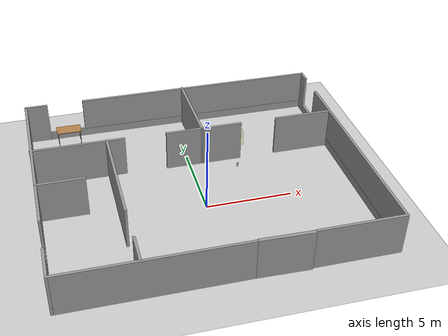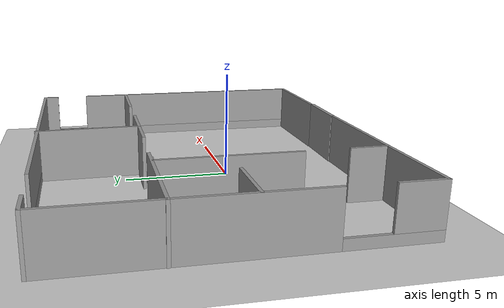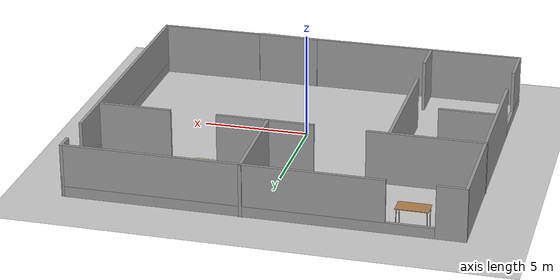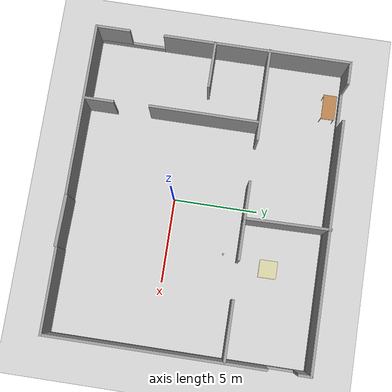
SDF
<sdf version="1.7">
 <world name="default">
  <light name="sun" type="directional">
   <pose>0 0 10 0 -0 0</pose>
   <diffuse>0.8 0.8 0.8 1</diffuse>
   <specular>0.2 0.2 0.2 1</specular>
   <attenuation>
    <range>1000</range>
    <constant>0.9</constant>
    <linear>0.01</linear>
    <quadratic>0.001</quadratic>
   </attenuation>
   <direction>-0.5 0.1 -0.9</direction>
   <spot><inner_angle>0</inner_angle><outer_angle>0</outer_angle><falloff>0</falloff></spot>
  </light>
  <model name="ground_plane">
   <static>1</static>
   <link name="link">
    <collision name="collision">
     <geometry><plane><normal>0 0 1</normal><size>100 100</size></plane></geometry>
     <surface><friction><ode><mu>100</mu><mu2>50</mu2></ode></friction></surface>
    </collision>
    <visual name="visual">
     <cast_shadows>0</cast_shadows>
     <geometry><plane><normal>0 0 1</normal><size>100 100</size></plane></geometry>
     <material>
      <script><uri>file://media/materials/scripts/gazebo.material</uri><name>Gazebo/Grey</name></script>
     </material>
    </visual>
   </link>
  </model>
  <gravity>0 0 -9.8</gravity>
  <magnetic_field>6e-06 2.3e-05 -4.2e-05</magnetic_field>
  <atmosphere type="adiabatic"/>
  <physics type="ode">
   <max_step_size>0.001</max_step_size>
   <real_time_factor>1</real_time_factor>
   <real_time_update_rate>1000</real_time_update_rate>
  </physics>
  <scene><ambient>0.4 0.4 0.4 1</ambient><background>0.7 0.7 0.7 1</background><shadows>1</shadows></scene>
  <spherical_coordinates>
   <surface_model>EARTH_WGS84</surface_model>
   <latitude_deg>0</latitude_deg>
   <longitude_deg>0</longitude_deg>
   <elevation>0</elevation>
   <heading_deg>0</heading_deg>
  </spherical_coordinates>
  <model name="my_house">
   <pose>-0.185618 1.56339 0 0 -0 0</pose>
   <link name="Door_3">
    <collision name="Door_3_Collision">
     <geometry><box><size>3.014 0.2 2.5</size></box></geometry>
     <pose>0 0 1.25 0 -0 0</pose>
    </collision>
    <visual name="Door_3_Visual">
     <pose>0 0 1.25 0 -0 0</pose>
     <geometry><box><size>3.014 0.2 2.5</size></box></geometry>
     <material>
      <script><uri>file://media/materials/scripts/gazebo.material</uri><name>Gazebo/Grey</name></script>
     </material>
    </visual>
    <pose>2.64688 -7.59749 0 0 -0 3.11727</pose>
   </link>
   <link name="Wall_15">
    <pose>-9.03486 -0.029337 0 0 -0 -1.5708</pose>
    <visual name="Wall_15_Visual_0">
     <pose>-2.04674 0 1.25 0 -0 0</pose>
     <geometry><box><size>11.1565 0.15 2.5</size></box></geometry>
     <material>
      <script><uri>file://media/materials/scripts/gazebo.material</uri><name>Gazebo/Grey</name></script>
      <ambient>1 1 1 1</ambient>
     </material>
     <meta><layer>0</layer></meta>
    </visual>
    <collision name="Wall_15_Collision_0">
     <geometry><box><size>11.1565 0.15 2.5</size></box></geometry>
     <pose>-2.04674 0 1.25 0 -0 0</pose>
    </collision>
    <visual name="Wall_15_Visual_1">
     <pose>5.57826 0 0.25 0 -0 0</pose>
     <geometry><box><size>4.09349 0.15 0.5</size></box></geometry>
     <material>
      <script><uri>file://media/materials/scripts/gazebo.material</uri><name>Gazebo/Grey</name></script>
      <ambient>1 1 1 1</ambient>
     </material>
     <meta><layer>0</layer></meta>
    </visual>
    <collision name="Wall_15_Collision_1">
     <geometry><box><size>4.09349 0.15 0.5</size></box></geometry>
     <pose>5.57826 0 0.25 0 -0 0</pose>
    </collision>
    <visual name="Wall_15_Visual_2">
     <pose>6.57826 0 1.5 0 -0 0</pose>
     <geometry><box><size>2.09349 0.15 2</size></box></geometry>
     <material>
      <script><uri>file://media/materials/scripts/gazebo.material</uri><name>Gazebo/Grey</name></script>
      <ambient>1 1 1 1</ambient>
     </material>
     <meta><layer>0</layer></meta>
    </visual>
    <collision name="Wall_15_Collision_2">
     <geometry><box><size>2.09349 0.15 2</size></box></geometry>
     <pose>6.57826 0 1.5 0 -0 0</pose>
    </collision>
   </link>
   <link name="Wall_18">
    <pose>0.015141 7.52066 0 0 -0 0</pose>
    <visual name="Wall_18_Visual_0">
     <pose>-8.43125 0 1.25 0 -0 0</pose>
     <geometry><box><size>1.3875 0.15 2.5</size></box></geometry>
     <material>
      <script><uri>file://media/materials/scripts/gazebo.material</uri><name>Gazebo/Grey</name></script>
      <ambient>1 1 1 1</ambient>
     </material>
     <meta><layer>0</layer></meta>
    </visual>
    <collision name="Wall_18_Collision_0">
     <geometry><box><size>1.3875 0.15 2.5</size></box></geometry>
     <pose>-8.43125 0 1.25 0 -0 0</pose>
    </collision>
    <visual name="Wall_18_Visual_1">
     <pose>0.693749 0 0.25 0 -0 0</pose>
     <geometry><box><size>16.8625 0.15 0.5</size></box></geometry>
     <material>
      <script><uri>file://media/materials/scripts/gazebo.material</uri><name>Gazebo/Grey</name></script>
      <ambient>1 1 1 1</ambient>
     </material>
     <meta><layer>0</layer></meta>
    </visual>
    <collision name="Wall_18_Collision_1">
     <geometry><box><size>16.8625 0.15 0.5</size></box></geometry>
     <pose>0.693749 0 0.25 0 -0 0</pose>
    </collision>
    <visual name="Wall_18_Visual_2">
     <pose>1.77875 0 1.5 0 -0 0</pose>
     <geometry><box><size>14.6925 0.15 2</size></box></geometry>
     <material>
      <script><uri>file://media/materials/scripts/gazebo.material</uri><name>Gazebo/Grey</name></script>
      <ambient>1 1 1 1</ambient>
     </material>
     <meta><layer>0</layer></meta>
    </visual>
    <collision name="Wall_18_Collision_2">
     <geometry><box><size>14.6925 0.15 2</size></box></geometry>
     <pose>1.77875 0 1.5 0 -0 0</pose>
    </collision>
   </link>
   <link name="Wall_19">
    <pose>9.06514 -0.029337 0 0 -0 -1.5708</pose>
    <visual name="Wall_19_Visual_0">
     <pose>-7.20925 0 1.25 0 -0 0</pose>
     <geometry><box><size>0.831501 0.15 2.5</size></box></geometry>
     <material>
      <script><uri>file://media/materials/scripts/gazebo.material</uri><name>Gazebo/Grey</name></script>
      <ambient>1 1 1 1</ambient>
     </material>
     <meta><layer>0</layer></meta>
    </visual>
    <collision name="Wall_19_Collision_0">
     <geometry><box><size>0.831501 0.15 2.5</size></box></geometry>
     <pose>-7.20925 0 1.25 0 -0 0</pose>
    </collision>
    <visual name="Wall_19_Visual_1">
     <pose>0.41575 0 0.25 0 -0 0</pose>
     <geometry><box><size>14.4185 0.15 0.5</size></box></geometry>
     <material>
      <script><uri>file://media/materials/scripts/gazebo.material</uri><name>Gazebo/Grey</name></script>
      <ambient>1 1 1 1</ambient>
     </material>
     <meta><layer>0</layer></meta>
    </visual>
    <collision name="Wall_19_Collision_1">
     <geometry><box><size>14.4185 0.15 0.5</size></box></geometry>
     <pose>0.41575 0 0.25 0 -0 0</pose>
    </collision>
    <visual name="Wall_19_Visual_2">
     <pose>1.24225 0 1.5 0 -0 0</pose>
     <geometry><box><size>12.7655 0.15 2</size></box></geometry>
     <material>
      <script><uri>file://media/materials/scripts/gazebo.material</uri><name>Gazebo/Grey</name></script>
      <ambient>1 1 1 1</ambient>
     </material>
     <meta><layer>0</layer></meta>
    </visual>
    <collision name="Wall_19_Collision_2">
     <geometry><box><size>12.7655 0.15 2</size></box></geometry>
     <pose>1.24225 0 1.5 0 -0 0</pose>
    </collision>
   </link>
   <link name="Wall_20">
    <collision name="Wall_20_Collision">
     <geometry><box><size>5 0.15 2.5</size></box></geometry>
     <pose>0 0 1.25 0 -0 0</pose>
    </collision>
    <visual name="Wall_20_Visual">
     <pose>0 0 1.25 0 -0 0</pose>
     <geometry><box><size>5 0.15 2.5</size></box></geometry>
     <material>
      <script><uri>file://media/materials/scripts/gazebo.material</uri><name>Gazebo/Grey</name></script>
      <ambient>1 1 1 1</ambient>
     </material>
     <meta><layer>0</layer></meta>
    </visual>
    <pose>6.64014 -7.57934 0 0 -0 3.14159</pose>
   </link>
   <link name="Wall_24">
    <collision name="Wall_24_Collision">
     <geometry><box><size>10.25 0.15 2.5</size></box></geometry>
     <pose>0 0 1.25 0 -0 0</pose>
    </collision>
    <visual name="Wall_24_Visual">
     <pose>0 0 1.25 0 -0 0</pose>
     <geometry><box><size>10.25 0.15 2.5</size></box></geometry>
     <material>
      <script><uri>file://media/materials/scripts/gazebo.material</uri><name>Gazebo/Grey</name></script>
      <ambient>1 1 1 1</ambient>
     </material>
     <meta><layer>0</layer></meta>
    </visual>
    <pose>-3.98486 -7.57934 0 0 -0 0</pose>
   </link>
   <link name="Wall_27">
    <collision name="Wall_27_Collision">
     <geometry><box><size>5.5 0.15 2.5</size></box></geometry>
     <pose>0 0 1.25 0 -0 0</pose>
    </collision>
    <visual name="Wall_27_Visual">
     <pose>0 0 1.25 0 -0 0</pose>
     <geometry><box><size>5.5 0.15 2.5</size></box></geometry>
     <material>
      <script><uri>file://media/materials/scripts/gazebo.material</uri><name>Gazebo/Grey</name></script>
      <ambient>1 1 1 1</ambient>
     </material>
     <meta><layer>0</layer></meta>
    </visual>
    <pose>-6.39014 2.7553 0 0 -0 0</pose>
   </link>
   <link name="Wall_30">
    <collision name="Wall_30_Collision">
     <geometry><box><size>3.5 0.15 2.5</size></box></geometry>
     <pose>0 0 1.25 0 -0 0</pose>
    </collision>
    <visual name="Wall_30_Visual">
     <pose>0 0 1.25 0 -0 0</pose>
     <geometry><box><size>3.5 0.15 2.5</size></box></geometry>
     <material>
      <script><uri>file://media/materials/scripts/gazebo.material</uri><name>Gazebo/Grey</name></script>
      <ambient>1 1 1 1</ambient>
     </material>
     <meta><layer>0</layer></meta>
    </visual>
    <pose>7.30417 2.68968 0 0 -0 3.14159</pose>
   </link>
   <link name="Wall_32">
    <collision name="Wall_32_Collision">
     <geometry><box><size>5.05073 0.15 2.5</size></box></geometry>
     <pose>0 0 1.25 0 -0 0</pose>
    </collision>
    <visual name="Wall_32_Visual">
     <pose>0 0 1.25 0 -0 0</pose>
     <geometry><box><size>5.05073 0.15 2.5</size></box></geometry>
     <material>
      <script><uri>file://media/materials/scripts/gazebo.material</uri><name>Gazebo/Grey</name></script>
      <ambient>1 1 1 1</ambient>
     </material>
     <meta><layer>0</layer></meta>
    </visual>
    <pose>0.917976 5.12805 0 0 -0 -1.55352</pose>
   </link>
   <link name="Wall_33">
    <collision name="Wall_33_Collision">
     <geometry><box><size>2.5 0.15 2.5</size></box></geometry>
     <pose>0 0 1.25 0 -0 0</pose>
    </collision>
    <visual name="Wall_33_Visual">
     <pose>0 0 1.25 0 -0 0</pose>
     <geometry><box><size>2.5 0.15 2.5</size></box></geometry>
     <material>
      <script><uri>file://media/materials/scripts/gazebo.material</uri><name>Gazebo/Grey</name></script>
      <ambient>1 1 1 1</ambient>
     </material>
     <meta><layer>0</layer></meta>
    </visual>
    <pose>2.13531 2.67805 0 0 -0 0</pose>
   </link>
   <link name="Wall_35">
    <collision name="Wall_35_Collision">
     <geometry><box><size>2.25 0.15 2.5</size></box></geometry>
     <pose>0 0 1.25 0 -0 0</pose>
    </collision>
    <visual name="Wall_35_Visual">
     <pose>0 0 1.25 0 -0 0</pose>
     <geometry><box><size>2.25 0.15 2.5</size></box></geometry>
     <material>
      <script><uri>file://media/materials/scripts/gazebo.material</uri><name>Gazebo/Grey</name></script>
      <ambient>1 1 1 1</ambient>
     </material>
     <meta><layer>0</layer></meta>
    </visual>
    <pose>-0.089685 2.67805 0 0 -0 3.14159</pose>
   </link>
   <link name="Wall_37">
    <collision name="Wall_37_Collision">
     <geometry><box><size>6.5 0.15 2.5</size></box></geometry>
     <pose>0 0 1.25 0 -0 0</pose>
    </collision>
    <visual name="Wall_37_Visual">
     <pose>0 0 1.25 0 -0 0</pose>
     <geometry><box><size>6.5 0.15 2.5</size></box></geometry>
     <material>
      <script><uri>file://media/materials/scripts/gazebo.material</uri><name>Gazebo/Grey</name></script>
      <ambient>1 1 1 1</ambient>
     </material>
     <meta><layer>0</layer></meta>
    </visual>
    <pose>-4.7017 -0.508963 0 0 -0 -1.5708</pose>
   </link>
   <link name="Wall_39">
    <collision name="Wall_39_Collision">
     <geometry><box><size>1.75 0.15 2.5</size></box></geometry>
     <pose>0 0 1.25 0 -0 0</pose>
    </collision>
    <visual name="Wall_39_Visual">
     <pose>0 0 1.25 0 -0 0</pose>
     <geometry><box><size>1.75 0.15 2.5</size></box></geometry>
     <material>
      <script><uri>file://media/materials/scripts/gazebo.material</uri><name>Gazebo/Grey</name></script>
      <ambient>1 1 1 1</ambient>
     </material>
     <meta><layer>0</layer></meta>
    </visual>
    <pose>-4.63608 -6.68075 0 0 -0 1.5708</pose>
   </link>
   <link name="Wall_41">
    <collision name="Wall_41_Collision">
     <geometry><box><size>2.75 0.15 2.5</size></box></geometry>
     <pose>0 0 1.25 0 -0 0</pose>
    </collision>
    <visual name="Wall_41_Visual">
     <pose>0 0 1.25 0 -0 0</pose>
     <geometry><box><size>2.75 0.15 2.5</size></box></geometry>
     <material>
      <script><uri>file://media/materials/scripts/gazebo.material</uri><name>Gazebo/Grey</name></script>
      <ambient>1 1 1 1</ambient>
     </material>
     <meta><layer>0</layer></meta>
    </visual>
    <pose>-7.69953 -0.492678 0 0 -0 0</pose>
   </link>
   <static>1</static>
  </model>
  <model name="table">
   <static>1</static>
   <link name="link">
    <collision name="surface">
     <pose>0 0 1 0 -0 0</pose>
     <geometry><box><size>1.5 0.8 0.03</size></box></geometry>
     <surface><friction><ode><mu>0.6</mu><mu2>0.6</mu2></ode></friction></surface>
    </collision>
    <visual name="visual1">
     <pose>0 0 1 0 -0 0</pose>
     <geometry><box><size>1.5 0.8 0.03</size></box></geometry>
     <material>
      <script><uri>file://media/materials/scripts/gazebo.material</uri><name>Gazebo/Wood</name></script>
     </material>
    </visual>
    <collision name="front_left_leg">
     <pose>0.68 0.38 0.5 0 -0 0</pose>
     <geometry><cylinder><radius>0.02</radius><length>1</length></cylinder></geometry>
    </collision>
    <visual name="front_left_leg">
     <pose>0.68 0.38 0.5 0 -0 0</pose>
     <geometry><cylinder><radius>0.02</radius><length>1</length></cylinder></geometry>
     <material>
      <script><uri>file://media/materials/scripts/gazebo.material</uri><name>Gazebo/Grey</name></script>
     </material>
    </visual>
    <collision name="front_right_leg">
     <pose>0.68 -0.38 0.5 0 -0 0</pose>
     <geometry><cylinder><radius>0.02</radius><length>1</length></cylinder></geometry>
    </collision>
    <visual name="front_right_leg">
     <pose>0.68 -0.38 0.5 0 -0 0</pose>
     <geometry><cylinder><radius>0.02</radius><length>1</length></cylinder></geometry>
     <material>
      <script><uri>file://media/materials/scripts/gazebo.material</uri><name>Gazebo/Grey</name></script>
     </material>
    </visual>
    <collision name="back_right_leg">
     <pose>-0.68 -0.38 0.5 0 -0 0</pose>
     <geometry><cylinder><radius>0.02</radius><length>1</length></cylinder></geometry>
    </collision>
    <visual name="back_right_leg">
     <pose>-0.68 -0.38 0.5 0 -0 0</pose>
     <geometry><cylinder><radius>0.02</radius><length>1</length></cylinder></geometry>
     <material>
      <script><uri>file://media/materials/scripts/gazebo.material</uri><name>Gazebo/Grey</name></script>
     </material>
    </visual>
    <collision name="back_left_leg">
     <pose>-0.68 0.38 0.5 0 -0 0</pose>
     <geometry><cylinder><radius>0.02</radius><length>1</length></cylinder></geometry>
    </collision>
    <visual name="back_left_leg">
     <pose>-0.68 0.38 0.5 0 -0 0</pose>
     <geometry><cylinder><radius>0.02</radius><length>1</length></cylinder></geometry>
     <material>
      <script><uri>file://media/materials/scripts/gazebo.material</uri><name>Gazebo/Grey</name></script>
     </material>
    </visual>
   </link>
   <pose>-6.80898 8.36189 0 0 -0 0</pose>
  </model>
  <model name="RegionEventBox">
   <static>1</static>
   <pose>3.31669 6.0839 0 0 -0 0</pose>
   <link name="link">
    <visual name="visual">
     <transparency>0.75</transparency>
     <geometry><box><size>1 1 1.75</size></box></geometry>
     <material>
      <script><uri>file://media/materials/scripts/gazebo.material</uri><name>Gazebo/Yellow</name></script>
     </material>
    </visual>
   </link>
   <plugin name="region_event_box" filename="libRegionEventBoxPlugin.so">
    <event><name>model_in_region_event_box</name><type>inclusion</type><active>1</active></event>
   </plugin>
  </model>
  <model name="beer">
   <link name="link">
    <pose>0 0 0.115 0 -0 0</pose>
    <inertial>
     <mass>0.39</mass>
     <inertia><ixx>0.00058</ixx><ixy>0</ixy><ixz>0</ixz><iyy>0.00058</iyy><iyz>0</iyz><izz>0.00019</izz></inertia>
    </inertial>
    <collision name="collision">
     <geometry><cylinder><radius>0.055</radius><length>0.23</length></cylinder></geometry>
    </collision>
    <visual name="visual">
     <geometry><cylinder><radius>0.055</radius><length>0.23</length></cylinder></geometry>
     <material>
      <script>
       <uri>model://beer/materials/scripts</uri>
       <uri>model://beer/materials/textures</uri>
       <name>Beer/Diffuse</name>
      </script>
     </material>
    </visual>
   </link>
   <pose>2.79005 3.36581 -2e-06 1e-06 -0 -1e-06</pose>
  </model>
 </world>
</sdf>
